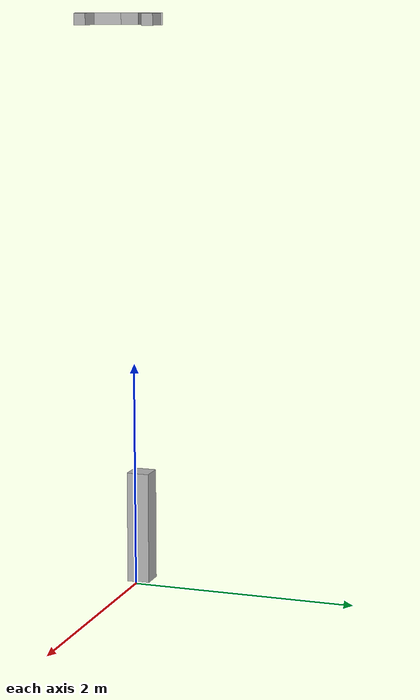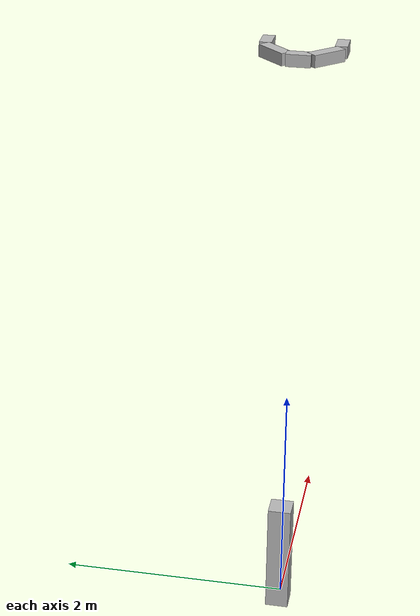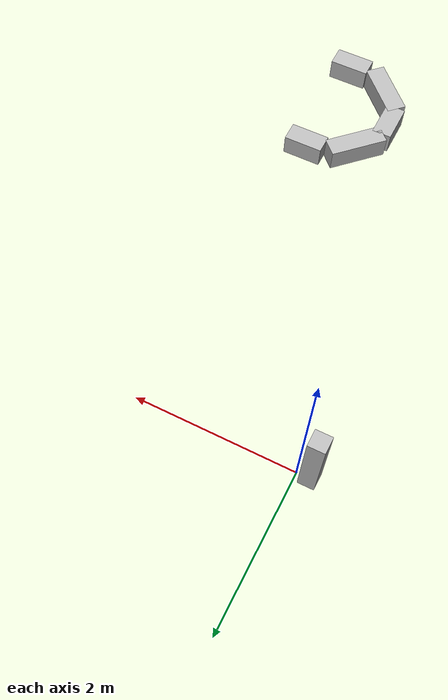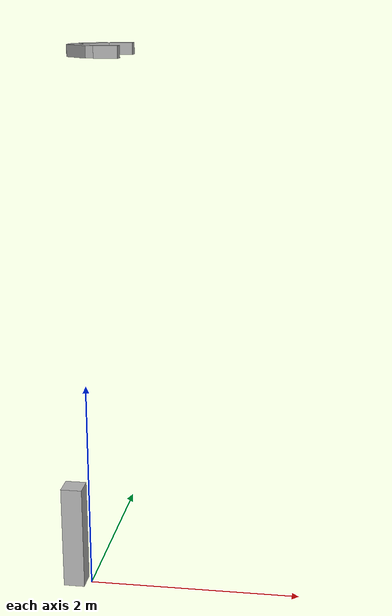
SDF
<?xml version="1.0"?>
<sdf version="1.4">
    <model name="simple_gripper">
        <link name="riser">
            <pose>-0.15 0.0 0.5 0 0 0</pose>
            <inertial>
                <pose>0 0 -0.5 0 0 0</pose>
                <inertia>
                    <ixx>0.01</ixx>
                    <ixy>0</ixy>
                    <ixz>0</ixz>
                    <iyy>0.01</iyy>
                    <iyz>0</iyz>
                    <izz>0.01</izz>
                </inertia>
                <mass>10.0</mass>
            </inertial>
            <collision name="collision">
                <geometry>
                    <box>
                        <size>0.2 0.2 1.0</size>
                    </box>
                </geometry>
            </collision>
            <visual name="visual">
                <geometry>
                    <box>
                        <size>0.2 0.2 1.0</size>
                    </box>
                </geometry>
                <material>
                    <script>Gazebo/Purple</script>
                </material>
            </visual>
        </link>
        <link name="palm">
            <pose>0.0 0.0 5 0 0 0</pose>
            <inertial>
                <inertia>
                    <ixx>0.01</ixx>
                    <ixy>0</ixy>
                    <ixz>0</ixz>
                    <iyy>0.01</iyy>
                    <iyz>0</iyz>
                    <izz>0.01</izz>
                </inertia>
                <mass>0.5</mass>
            </inertial>
            <collision name="collision">
                <geometry>
                    <box>
                        <size>0.1 0.2 0.1</size>
                    </box>
                </geometry>
            </collision>
            <visual name="visual">
                <geometry>
                    <box>
                        <size>0.1 0.2 0.1</size>
                    </box>
                </geometry>
                <material>
                    <script>Gazebo/Red</script>
                </material>
            </visual>
        </link>
        <link name="left_finger">
            <pose>0.1 0.2 5 0 0 -0.78539</pose>
            <inertial>
                <inertia>
                    <ixx>0.01</ixx>
                    <ixy>0</ixy>
                    <ixz>0</ixz>
                    <iyy>0.01</iyy>
                    <iyz>0</iyz>
                    <izz>0.01</izz>
                </inertia>
                <mass>0.1</mass>
            </inertial>
            <collision name="collision">
                <geometry>
                    <box>
                        <size>0.1 0.3 0.1</size>
                    </box>
                </geometry>
            </collision>
            <visual name="visual">
                <geometry>
                    <box>
                        <size>0.1 0.3 0.1</size>
                    </box>
                </geometry>
                <material>
                    <script>Gazebo/Blue</script>
                </material>
            </visual>
        </link>
        <link name="left_finger_tip">
            <pose>0.336 0.3 5 0 0 1.5707</pose>
            <inertial>
                <inertia>
                    <ixx>0.01</ixx>
                    <ixy>0</ixy>
                    <ixz>0</ixz>
                    <iyy>0.01</iyy>
                    <iyz>0</iyz>
                    <izz>0.01</izz>
                </inertia>
                <mass>0.1</mass>
            </inertial>
            <collision name="collision">
                <geometry>
                    <box>
                        <size>0.1 0.2 0.1</size>
                    </box>
                </geometry>
            </collision>
            <visual name="visual">
                <geometry>
                    <box>
                        <size>0.1 0.2 0.1</size>
                    </box>
                </geometry>
                <material>
                    <script>Gazebo/Blue</script>
                </material>
            </visual>
        </link>
        <link name="right_finger">
            <pose>0.1 -0.2 5 0 0 .78539</pose>
            <inertial>
                <inertia>
                    <ixx>0.01</ixx>
                    <ixy>0</ixy>
                    <ixz>0</ixz>
                    <iyy>0.01</iyy>
                    <iyz>0</iyz>
                    <izz>0.01</izz>
                </inertia>
                <mass>0.1</mass>
            </inertial>
            <collision name="collision">
                <geometry>
                    <box>
                        <size>0.1 0.3 0.1</size>
                    </box>
                </geometry>
            </collision>
            <visual name="visual">
                <geometry>
                    <box>
                        <size>0.1 0.3 0.1</size>
                    </box>
                </geometry>
                <material>
                    <script>Gazebo/Green</script>
                </material>
            </visual>
        </link>
        <link name="right_finger_tip">
            <pose>0.336 -0.3 5 0 0 1.5707</pose>
            <inertial>
                <inertia>
                    <ixx>0.01</ixx>
                    <ixy>0</ixy>
                    <ixz>0</ixz>
                    <iyy>0.01</iyy>
                    <iyz>0</iyz>
                    <izz>0.01</izz>
                </inertia>
                <mass>0.1</mass>
            </inertial>
            <collision name="collision">
                <geometry>
                    <box>
                        <size>0.1 0.2 0.1</size>
                    </box>
                </geometry>
            </collision>
            <visual name="visual">
                <geometry>
                    <box>
                        <size>0.1 0.2 0.1</size>
                    </box>
                </geometry>
                <material>
                    <script>Gazebo/Green</script>
                </material>
            </visual>
        </link>
        <joint name="palm_left_finger" type="revolute">
            <pose>0 -0.15 5 0 0 0</pose>
            <child>left_finger</child>
            <parent>palm</parent>
            <axis>
                <limit>
                    <lower>-0.4</lower>
                    <upper>0.4</upper>
                </limit>
                <xyz>0 0 1</xyz>
            </axis>
        </joint>
        <joint name="left_finger_tip" type="revolute">
            <pose>0 0.1 5 0 0 0</pose>
            <child>left_finger_tip</child>
            <parent>left_finger</parent>
            <axis>
                <limit>
                    <lower>-0.4</lower>
                    <upper>0.4</upper>
                </limit>
                <xyz>0 0 1</xyz>
            </axis>
        </joint>
        <joint name="palm_right_finger" type="revolute">
            <pose>0 0.15 0 0 0 0</pose>
            <child>right_finger</child>
            <parent>palm</parent>
            <axis>
                <limit>
                    <lower>-0.4</lower>
                    <upper>0.4</upper>
                </limit>
                <xyz>0 0 1</xyz>
            </axis>
        </joint>
        <joint name="right_finger_tip" type="revolute">
            <pose>0 0.1 5 0 0 0</pose>
            <child>right_finger_tip</child>
            <parent>right_finger</parent>
            <axis>
                <limit>
                    <lower>-0.4</lower>
                    <upper>0.4</upper>
                </limit>
                <xyz>0 0 1</xyz>
            </axis>
        </joint>
        <joint name="palm_riser" type="prismatic">
            <child>palm</child>
            <parent>riser</parent>
            <axis>
                <limit>
                    <lower>0</lower>
                    <upper>0.9</upper>
                </limit>
                <xyz>0 0 1</xyz>
            </axis>
        </joint>
        <static>false</static>
    </model>
</sdf>
